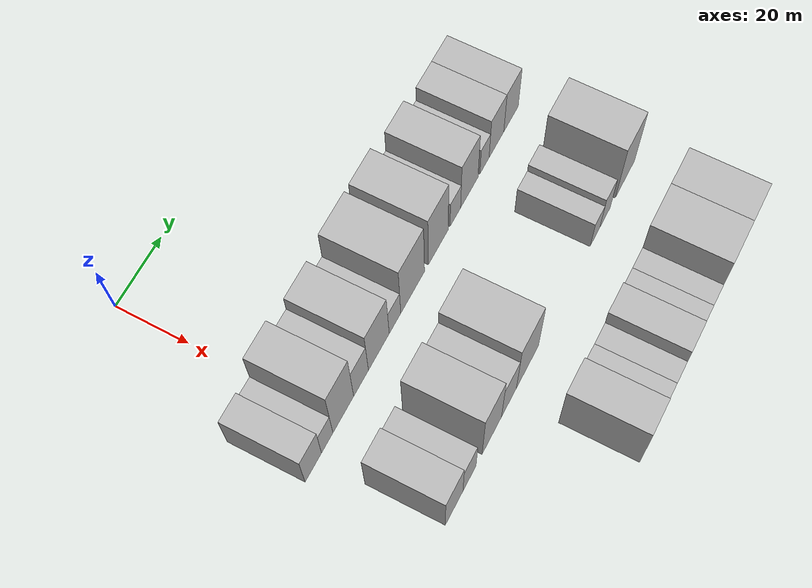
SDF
<sdf version="1.6">
 <world name="default">
  <model name="building_38">
   <static>1</static>
   <pose>50.0000 -12.3546 0 0.000000 0.000000 0.000000</pose>
   <link name="link">
    <pose>0 0 7.50 0 0 0</pose>
    <collision name="collision"><geometry><box><size>20.0000 7.4448 15.0000</size></box></geometry></collision>
    <visual name="visual">
     <cast_shadows>0</cast_shadows>
     <geometry><box><size>20.0000 7.4448 15.0000</size></box></geometry>
     <material>
      <script>
       <uri>model://HANNAS_wall/materials/scripts</uri>
       <uri>model://HANNAS_wall/materials/textures</uri>
       <name>vrc/HANNAS_wall</name>
      </script>
     </material>
    </visual>
   </link>
  </model>
  <model name="building_39">
   <static>1</static>
   <pose>50.0000 -6.0099 0 0.000000 0.000000 0.000000</pose>
   <link name="link">
    <pose>0 0 6.00 0 0 0</pose>
    <collision name="collision"><geometry><box><size>20.0000 5.2446 12.0000</size></box></geometry></collision>
    <visual name="visual">
     <cast_shadows>0</cast_shadows>
     <geometry><box><size>20.0000 5.2446 12.0000</size></box></geometry>
     <material>
      <script>
       <uri>model://HANNAS_wall/materials/scripts</uri>
       <uri>model://HANNAS_wall/materials/textures</uri>
       <name>vrc/HANNAS_wall</name>
      </script>
     </material>
    </visual>
   </link>
  </model>
  <model name="building_40">
   <static>1</static>
   <pose>50.0000 1.4643 0 0.000000 0.000000 0.000000</pose>
   <link name="link">
    <pose>0 0 12.00 0 0 0</pose>
    <collision name="collision"><geometry><box><size>20.0000 9.7036 24.0000</size></box></geometry></collision>
    <visual name="visual">
     <cast_shadows>0</cast_shadows>
     <geometry><box><size>20.0000 9.7036 24.0000</size></box></geometry>
     <material>
      <script>
       <uri>model://HANNAS_wall/materials/scripts</uri>
       <uri>model://HANNAS_wall/materials/textures</uri>
       <name>vrc/HANNAS_wall</name>
      </script>
     </material>
    </visual>
   </link>
  </model>
  <model name="building_41">
   <static>1</static>
   <pose>50.0000 9.8252 0 0.000000 0.000000 0.000000</pose>
   <link name="link">
    <pose>0 0 7.50 0 0 0</pose>
    <collision name="collision"><geometry><box><size>20.0000 7.0182 15.0000</size></box></geometry></collision>
    <visual name="visual">
     <cast_shadows>0</cast_shadows>
     <geometry><box><size>20.0000 7.0182 15.0000</size></box></geometry>
     <material>
      <script>
       <uri>model://HANNAS_wall/materials/scripts</uri>
       <uri>model://HANNAS_wall/materials/textures</uri>
       <name>vrc/HANNAS_wall</name>
      </script>
     </material>
    </visual>
   </link>
  </model>
  <model name="building_42">
   <static>1</static>
   <pose>50.0000 18.3706 0 0.000000 0.000000 0.000000</pose>
   <link name="link">
    <pose>0 0 10.50 0 0 0</pose>
    <collision name="collision"><geometry><box><size>20.0000 10.0727 21.0000</size></box></geometry></collision>
    <visual name="visual">
     <cast_shadows>0</cast_shadows>
     <geometry><box><size>20.0000 10.0727 21.0000</size></box></geometry>
     <material>
      <script>
       <uri>model://HANNAS_wall/materials/scripts</uri>
       <uri>model://HANNAS_wall/materials/textures</uri>
       <name>vrc/HANNAS_wall</name>
      </script>
     </material>
    </visual>
   </link>
  </model>
  <model name="building_43">
   <static>1</static>
   <pose>50.0000 26.2622 0 0.000000 0.000000 0.000000</pose>
   <link name="link">
    <pose>0 0 6.00 0 0 0</pose>
    <collision name="collision"><geometry><box><size>20.0000 5.7104 12.0000</size></box></geometry></collision>
    <visual name="visual">
     <cast_shadows>0</cast_shadows>
     <geometry><box><size>20.0000 5.7104 12.0000</size></box></geometry>
     <material>
      <script>
       <uri>model://HANNAS_wall/materials/scripts</uri>
       <uri>model://HANNAS_wall/materials/textures</uri>
       <name>vrc/HANNAS_wall</name>
      </script>
     </material>
    </visual>
   </link>
  </model>
  <model name="building_44">
   <static>1</static>
   <pose>50.0000 35.0794 0 0.000000 0.000000 0.000000</pose>
   <link name="link">
    <pose>0 0 12.00 0 0 0</pose>
    <collision name="collision"><geometry><box><size>20.0000 11.9240 24.0000</size></box></geometry></collision>
    <visual name="visual">
     <cast_shadows>0</cast_shadows>
     <geometry><box><size>20.0000 11.9240 24.0000</size></box></geometry>
     <material>
      <script>
       <uri>model://HANNAS_wall/materials/scripts</uri>
       <uri>model://HANNAS_wall/materials/textures</uri>
       <name>vrc/HANNAS_wall</name>
      </script>
     </material>
    </visual>
   </link>
  </model>
  <model name="building_45">
   <static>1</static>
   <pose>50.0000 48.1563 0 0.000000 0.000000 0.000000</pose>
   <link name="link">
    <pose>0 0 12.00 0 0 0</pose>
    <collision name="collision"><geometry><box><size>20.0000 10.2297 24.0000</size></box></geometry></collision>
    <visual name="visual">
     <cast_shadows>0</cast_shadows>
     <geometry><box><size>20.0000 10.2297 24.0000</size></box></geometry>
     <material>
      <script>
       <uri>model://HANNAS_wall/materials/scripts</uri>
       <uri>model://HANNAS_wall/materials/textures</uri>
       <name>vrc/HANNAS_wall</name>
      </script>
     </material>
    </visual>
   </link>
  </model>
  <model name="building_46">
   <static>1</static>
   <pose>50.0000 57.0596 0 0.000000 0.000000 0.000000</pose>
   <link name="link">
    <pose>0 0 6.00 0 0 0</pose>
    <collision name="collision"><geometry><box><size>20.0000 5.5768 12.0000</size></box></geometry></collision>
    <visual name="visual">
     <cast_shadows>0</cast_shadows>
     <geometry><box><size>20.0000 5.5768 12.0000</size></box></geometry>
     <material>
      <script>
       <uri>model://HANNAS_wall/materials/scripts</uri>
       <uri>model://HANNAS_wall/materials/textures</uri>
       <name>vrc/HANNAS_wall</name>
      </script>
     </material>
    </visual>
   </link>
  </model>
  <model name="building_47">
   <static>1</static>
   <pose>50.0000 64.5118 0 0.000000 0.000000 0.000000</pose>
   <link name="link">
    <pose>0 0 10.50 0 0 0</pose>
    <collision name="collision"><geometry><box><size>20.0000 9.3276 21.0000</size></box></geometry></collision>
    <visual name="visual">
     <cast_shadows>0</cast_shadows>
     <geometry><box><size>20.0000 9.3276 21.0000</size></box></geometry>
     <material>
      <script>
       <uri>model://HANNAS_wall/materials/scripts</uri>
       <uri>model://HANNAS_wall/materials/textures</uri>
       <name>vrc/HANNAS_wall</name>
      </script>
     </material>
    </visual>
   </link>
  </model>
  <model name="building_48">
   <static>1</static>
   <pose>50.0000 72.6799 0 0.000000 0.000000 0.000000</pose>
   <link name="link">
    <pose>0 0 6.00 0 0 0</pose>
    <collision name="collision"><geometry><box><size>20.0000 5.0088 12.0000</size></box></geometry></collision>
    <visual name="visual">
     <cast_shadows>0</cast_shadows>
     <geometry><box><size>20.0000 5.0088 12.0000</size></box></geometry>
     <material>
      <script>
       <uri>model://HANNAS_wall/materials/scripts</uri>
       <uri>model://HANNAS_wall/materials/textures</uri>
       <name>vrc/HANNAS_wall</name>
      </script>
     </material>
    </visual>
   </link>
  </model>
  <model name="building_49">
   <static>1</static>
   <pose>50.0000 79.2572 0 0.000000 0.000000 0.000000</pose>
   <link name="link">
    <pose>0 0 9.00 0 0 0</pose>
    <collision name="collision"><geometry><box><size>20.0000 8.1458 18.0000</size></box></geometry></collision>
    <visual name="visual">
     <cast_shadows>0</cast_shadows>
     <geometry><box><size>20.0000 8.1458 18.0000</size></box></geometry>
     <material>
      <script>
       <uri>model://HANNAS_wall/materials/scripts</uri>
       <uri>model://HANNAS_wall/materials/textures</uri>
       <name>vrc/HANNAS_wall</name>
      </script>
     </material>
    </visual>
   </link>
  </model>
  <model name="building_50">
   <static>1</static>
   <pose>50.0000 87.3845 0 0.000000 0.000000 0.000000</pose>
   <link name="link">
    <pose>0 0 9.00 0 0 0</pose>
    <collision name="collision"><geometry><box><size>20.0000 8.1087 18.0000</size></box></geometry></collision>
    <visual name="visual">
     <cast_shadows>0</cast_shadows>
     <geometry><box><size>20.0000 8.1087 18.0000</size></box></geometry>
     <material>
      <script>
       <uri>model://HANNAS_wall/materials/scripts</uri>
       <uri>model://HANNAS_wall/materials/textures</uri>
       <name>vrc/HANNAS_wall</name>
      </script>
     </material>
    </visual>
   </link>
  </model>
  <model name="building_116">
   <static>1</static>
   <pose>82.0000 -6.1016 0 0.000000 0.000000 0.000000</pose>
   <link name="link">
    <pose>0 0 9.00 0 0 0</pose>
    <collision name="collision"><geometry><box><size>20.0000 8.5168 18.0000</size></box></geometry></collision>
    <visual name="visual">
     <cast_shadows>0</cast_shadows>
     <geometry><box><size>20.0000 8.5168 18.0000</size></box></geometry>
     <material>
      <script>
       <uri>model://HANNAS_wall/materials/scripts</uri>
       <uri>model://HANNAS_wall/materials/textures</uri>
       <name>vrc/HANNAS_wall</name>
      </script>
     </material>
    </visual>
   </link>
  </model>
  <model name="building_117">
   <static>1</static>
   <pose>82.0000 1.3639 0 0.000000 0.000000 0.000000</pose>
   <link name="link">
    <pose>0 0 7.50 0 0 0</pose>
    <collision name="collision"><geometry><box><size>20.0000 6.4143 15.0000</size></box></geometry></collision>
    <visual name="visual">
     <cast_shadows>0</cast_shadows>
     <geometry><box><size>20.0000 6.4143 15.0000</size></box></geometry>
     <material>
      <script>
       <uri>model://HANNAS_wall/materials/scripts</uri>
       <uri>model://HANNAS_wall/materials/textures</uri>
       <name>vrc/HANNAS_wall</name>
      </script>
     </material>
    </visual>
   </link>
  </model>
  <model name="building_118">
   <static>1</static>
   <pose>82.0000 12.4563 0 0.000000 0.000000 0.000000</pose>
   <link name="link">
    <pose>0 0 12.00 0 0 0</pose>
    <collision name="collision"><geometry><box><size>20.0000 9.7705 24.0000</size></box></geometry></collision>
    <visual name="visual">
     <cast_shadows>0</cast_shadows>
     <geometry><box><size>20.0000 9.7705 24.0000</size></box></geometry>
     <material>
      <script>
       <uri>model://HANNAS_wall/materials/scripts</uri>
       <uri>model://HANNAS_wall/materials/textures</uri>
       <name>vrc/HANNAS_wall</name>
      </script>
     </material>
    </visual>
   </link>
  </model>
  <model name="building_119">
   <static>1</static>
   <pose>82.0000 21.1484 0 0.000000 0.000000 0.000000</pose>
   <link name="link">
    <pose>0 0 9.00 0 0 0</pose>
    <collision name="collision"><geometry><box><size>20.0000 7.6135 18.0000</size></box></geometry></collision>
    <visual name="visual">
     <cast_shadows>0</cast_shadows>
     <geometry><box><size>20.0000 7.6135 18.0000</size></box></geometry>
     <material>
      <script>
       <uri>model://HANNAS_wall/materials/scripts</uri>
       <uri>model://HANNAS_wall/materials/textures</uri>
       <name>vrc/HANNAS_wall</name>
      </script>
     </material>
    </visual>
   </link>
  </model>
  <model name="building_120">
   <static>1</static>
   <pose>82.0000 30.7555 0 0.000000 0.000000 0.000000</pose>
   <link name="link">
    <pose>0 0 12.00 0 0 0</pose>
    <collision name="collision"><geometry><box><size>20.0000 11.6007 24.0000</size></box></geometry></collision>
    <visual name="visual">
     <cast_shadows>0</cast_shadows>
     <geometry><box><size>20.0000 11.6007 24.0000</size></box></geometry>
     <material>
      <script>
       <uri>model://HANNAS_wall/materials/scripts</uri>
       <uri>model://HANNAS_wall/materials/textures</uri>
       <name>vrc/HANNAS_wall</name>
      </script>
     </material>
    </visual>
   </link>
  </model>
  <model name="building_121">
   <static>1</static>
   <pose>82.0000 67.6866 0 0.000000 0.000000 0.000000</pose>
   <link name="link">
    <pose>0 0 6.00 0 0 0</pose>
    <collision name="collision"><geometry><box><size>20.0000 5.4205 12.0000</size></box></geometry></collision>
    <visual name="visual">
     <cast_shadows>0</cast_shadows>
     <geometry><box><size>20.0000 5.4205 12.0000</size></box></geometry>
     <material>
      <script>
       <uri>model://HANNAS_wall/materials/scripts</uri>
       <uri>model://HANNAS_wall/materials/textures</uri>
       <name>vrc/HANNAS_wall</name>
      </script>
     </material>
    </visual>
   </link>
  </model>
  <model name="building_122">
   <static>1</static>
   <pose>82.0000 73.4243 0 0.000000 0.000000 0.000000</pose>
   <link name="link">
    <pose>0 0 7.50 0 0 0</pose>
    <collision name="collision"><geometry><box><size>20.0000 6.0547 15.0000</size></box></geometry></collision>
    <visual name="visual">
     <cast_shadows>0</cast_shadows>
     <geometry><box><size>20.0000 6.0547 15.0000</size></box></geometry>
     <material>
      <script>
       <uri>model://HANNAS_wall/materials/scripts</uri>
       <uri>model://HANNAS_wall/materials/textures</uri>
       <name>vrc/HANNAS_wall</name>
      </script>
     </material>
    </visual>
   </link>
  </model>
  <model name="building_123">
   <static>1</static>
   <pose>82.0000 85.1158 0 0.000000 0.000000 0.000000</pose>
   <link name="link">
    <pose>0 0 12.00 0 0 0</pose>
    <collision name="collision"><geometry><box><size>20.0000 11.3284 24.0000</size></box></geometry></collision>
    <visual name="visual">
     <cast_shadows>0</cast_shadows>
     <geometry><box><size>20.0000 11.3284 24.0000</size></box></geometry>
     <material>
      <script>
       <uri>model://HANNAS_wall/materials/scripts</uri>
       <uri>model://HANNAS_wall/materials/textures</uri>
       <name>vrc/HANNAS_wall</name>
      </script>
     </material>
    </visual>
   </link>
  </model>
  <model name="building_196">
   <static>1</static>
   <pose>114.0000 26.6985 0 0.000000 0.000000 0.000000</pose>
   <link name="link">
    <pose>0 0 10.50 0 0 0</pose>
    <collision name="collision"><geometry><box><size>20.0000 9.1221 21.0000</size></box></geometry></collision>
    <visual name="visual">
     <cast_shadows>0</cast_shadows>
     <geometry><box><size>20.0000 9.1221 21.0000</size></box></geometry>
     <material>
      <script>
       <uri>model://HANNAS_wall/materials/scripts</uri>
       <uri>model://HANNAS_wall/materials/textures</uri>
       <name>vrc/HANNAS_wall</name>
      </script>
     </material>
    </visual>
   </link>
  </model>
  <model name="building_197">
   <static>1</static>
   <pose>114.0000 35.8863 0 0.000000 0.000000 0.000000</pose>
   <link name="link">
    <pose>0 0 6.00 0 0 0</pose>
    <collision name="collision"><geometry><box><size>20.0000 5.2536 12.0000</size></box></geometry></collision>
    <visual name="visual">
     <cast_shadows>0</cast_shadows>
     <geometry><box><size>20.0000 5.2536 12.0000</size></box></geometry>
     <material>
      <script>
       <uri>model://HANNAS_wall/materials/scripts</uri>
       <uri>model://HANNAS_wall/materials/textures</uri>
       <name>vrc/HANNAS_wall</name>
      </script>
     </material>
    </visual>
   </link>
  </model>
  <model name="building_198">
   <static>1</static>
   <pose>114.0000 41.3428 0 0.000000 0.000000 0.000000</pose>
   <link name="link">
    <pose>0 0 6.00 0 0 0</pose>
    <collision name="collision"><geometry><box><size>20.0000 5.6595 12.0000</size></box></geometry></collision>
    <visual name="visual">
     <cast_shadows>0</cast_shadows>
     <geometry><box><size>20.0000 5.6595 12.0000</size></box></geometry>
     <material>
      <script>
       <uri>model://HANNAS_wall/materials/scripts</uri>
       <uri>model://HANNAS_wall/materials/textures</uri>
       <name>vrc/HANNAS_wall</name>
      </script>
     </material>
    </visual>
   </link>
  </model>
  <model name="building_199">
   <static>1</static>
   <pose>114.0000 48.2407 0 0.000000 0.000000 0.000000</pose>
   <link name="link">
    <pose>0 0 9.00 0 0 0</pose>
    <collision name="collision"><geometry><box><size>20.0000 8.1361 18.0000</size></box></geometry></collision>
    <visual name="visual">
     <cast_shadows>0</cast_shadows>
     <geometry><box><size>20.0000 8.1361 18.0000</size></box></geometry>
     <material>
      <script>
       <uri>model://HANNAS_wall/materials/scripts</uri>
       <uri>model://HANNAS_wall/materials/textures</uri>
       <name>vrc/HANNAS_wall</name>
      </script>
     </material>
    </visual>
   </link>
  </model>
  <model name="building_200">
   <static>1</static>
   <pose>114.0000 56.7435 0 0.000000 0.000000 0.000000</pose>
   <link name="link">
    <pose>0 0 6.00 0 0 0</pose>
    <collision name="collision"><geometry><box><size>20.0000 4.8694 12.0000</size></box></geometry></collision>
    <visual name="visual">
     <cast_shadows>0</cast_shadows>
     <geometry><box><size>20.0000 4.8694 12.0000</size></box></geometry>
     <material>
      <script>
       <uri>model://HANNAS_wall/materials/scripts</uri>
       <uri>model://HANNAS_wall/materials/textures</uri>
       <name>vrc/HANNAS_wall</name>
      </script>
     </material>
    </visual>
   </link>
  </model>
  <model name="building_201">
   <static>1</static>
   <pose>114.0000 61.9903 0 0.000000 0.000000 0.000000</pose>
   <link name="link">
    <pose>0 0 6.00 0 0 0</pose>
    <collision name="collision"><geometry><box><size>20.0000 5.6242 12.0000</size></box></geometry></collision>
    <visual name="visual">
     <cast_shadows>0</cast_shadows>
     <geometry><box><size>20.0000 5.6242 12.0000</size></box></geometry>
     <material>
      <script>
       <uri>model://HANNAS_wall/materials/scripts</uri>
       <uri>model://HANNAS_wall/materials/textures</uri>
       <name>vrc/HANNAS_wall</name>
      </script>
     </material>
    </visual>
   </link>
  </model>
  <model name="building_202">
   <static>1</static>
   <pose>114.0000 70.6345 0 0.000000 0.000000 0.000000</pose>
   <link name="link">
    <pose>0 0 12.00 0 0 0</pose>
    <collision name="collision"><geometry><box><size>20.0000 11.6643 24.0000</size></box></geometry></collision>
    <visual name="visual">
     <cast_shadows>0</cast_shadows>
     <geometry><box><size>20.0000 11.6643 24.0000</size></box></geometry>
     <material>
      <script>
       <uri>model://HANNAS_wall/materials/scripts</uri>
       <uri>model://HANNAS_wall/materials/textures</uri>
       <name>vrc/HANNAS_wall</name>
      </script>
     </material>
    </visual>
   </link>
  </model>
  <model name="building_203">
   <static>1</static>
   <pose>114.0000 81.5839 0 0.000000 0.000000 0.000000</pose>
   <link name="link">
    <pose>0 0 12.00 0 0 0</pose>
    <collision name="collision"><geometry><box><size>20.0000 10.2345 24.0000</size></box></geometry></collision>
    <visual name="visual">
     <cast_shadows>0</cast_shadows>
     <geometry><box><size>20.0000 10.2345 24.0000</size></box></geometry>
     <material>
      <script>
       <uri>model://HANNAS_wall/materials/scripts</uri>
       <uri>model://HANNAS_wall/materials/textures</uri>
       <name>vrc/HANNAS_wall</name>
      </script>
     </material>
    </visual>
   </link>
  </model>
 </world>
</sdf>
